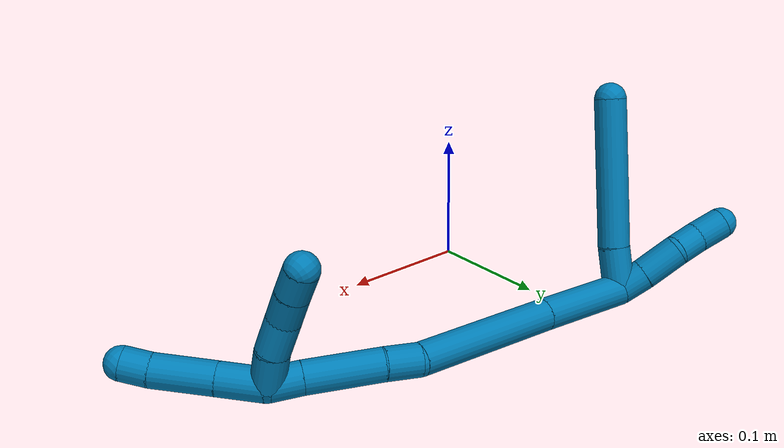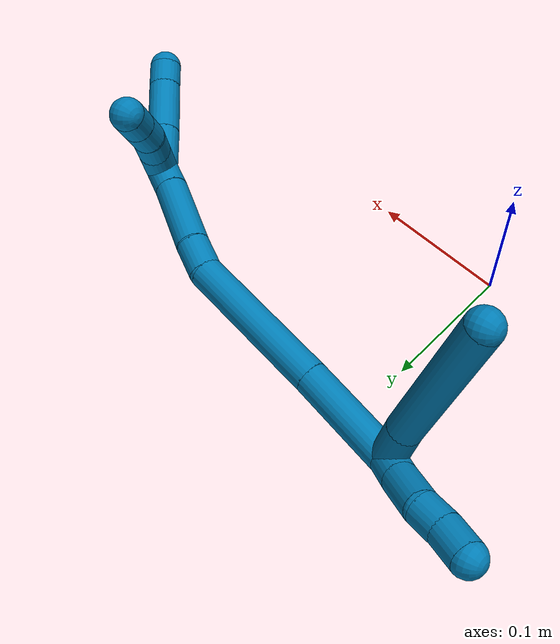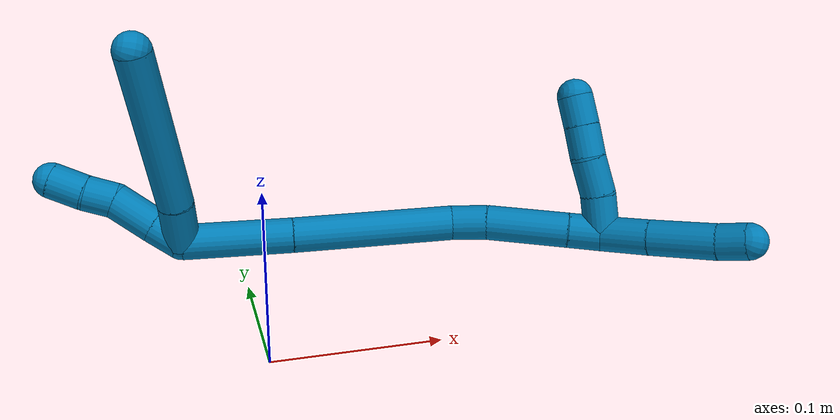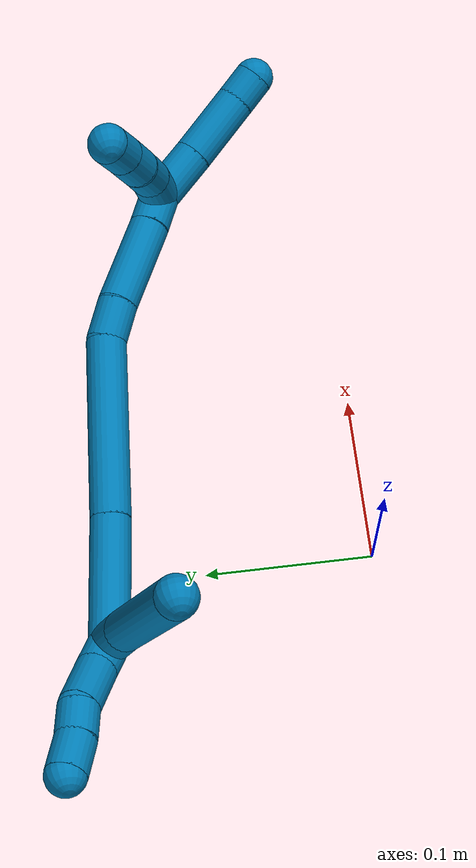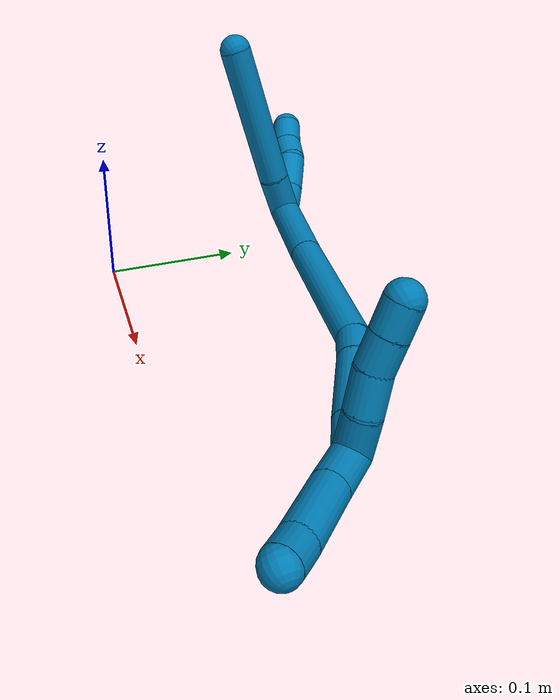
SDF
<sdf version="1.7">
 <world name="default">
  <model name="photoneo_s_sensor">
   <static>1</static>
   <pose>0 0 2 1.57079 1.57079 3.14159</pose>
   <link name="link">
    <inertial><mass>0.1</mass></inertial>
    <sensor name="sensor" type="depth">
     <update_rate>30</update_rate>
     <camera>
      <horizontal_fov>1.22</horizontal_fov>
      <image><width>1920</width><height>1200</height><format>B8G8R8</format></image>
      <clip><near>0.1</near><far>4</far></clip>
      <depth_camera><output>points</output></depth_camera>
     </camera>
     <plugin name="camera_plugin" filename="libgazebo_ros_depth_camera.so">
      <baseline>0.2</baseline>
      <alwaysOn>1</alwaysOn>
      <updateRate>0.0</updateRate>
      <cameraName>camera_ir</cameraName>
      <imageTopicName>/camera/color/image_raw</imageTopicName>
      <cameraInfoTopicName>/camera/color/camera_info</cameraInfoTopicName>
      <depthImageTopicName>/camera/depth/image_raw</depthImageTopicName>
      <depthImageCameraInfoTopicName>/camera/depth/camera_info</depthImageCameraInfoTopicName>
      <pointCloudTopicName>/camera/depth/points</pointCloudTopicName>
      <frameName>fr_optical</frameName>
      <pointCloudCutoff>0.1</pointCloudCutoff>
      <pointCloudCutoffMax>2.0</pointCloudCutoffMax>
      <distortionK1>0</distortionK1>
      <distortionK2>0</distortionK2>
      <distortionK3>0</distortionK3>
      <distortionT1>0</distortionT1>
      <distortionT2>0</distortionT2>
      <CxPrime>0</CxPrime>
      <Cx>0</Cx>
      <Cy>0</Cy>
      <focalLength>0</focalLength>
      <hackBaseline>0</hackBaseline>
     </plugin>
    </sensor>
   </link>
  </model>
  <model name="bin">
   <static>1</static>
   <link name="bottom">
    <collision name="collision-bottom">
     <pose>0 0 -0.01 0 -0 0</pose>
     <geometry><box><size>0.8 0.6 0.02</size></box></geometry>
     <surface>
      <friction><ode><mu>100</mu><mu2>100</mu2></ode></friction>
      <contact><collide_bitmask>65535</collide_bitmask></contact>
     </surface>
    </collision>
   </link>
   <link name="west_wall">
    <collision name="collision-west_wall">
     <pose>-0.41 0 0.1 0 -0 0</pose>
     <geometry><box><size>0.02 0.6 0.2</size></box></geometry>
     <surface>
      <friction><ode><mu>100</mu><mu2>100</mu2></ode></friction>
      <contact><collide_bitmask>65535</collide_bitmask></contact>
     </surface>
    </collision>
   </link>
   <link name="east_wall">
    <collision name="collision-east_wall">
     <pose>0.41 0 0.1 0 -0 0</pose>
     <geometry><box><size>0.02 0.6 0.2</size></box></geometry>
     <surface>
      <friction><ode><mu>100</mu><mu2>100</mu2></ode></friction>
      <contact><collide_bitmask>65535</collide_bitmask></contact>
     </surface>
    </collision>
   </link>
   <link name="south_wall">
    <collision name="collision-south_wall">
     <pose>0 -0.31 0.1 0 -0 0</pose>
     <geometry><box><size>0.8 0.02 0.2</size></box></geometry>
     <surface>
      <friction><ode><mu>100</mu><mu2>100</mu2></ode></friction>
      <contact><collide_bitmask>65535</collide_bitmask></contact>
     </surface>
    </collision>
   </link>
   <link name="north_wall">
    <collision name="collision-north_wall">
     <pose>0 0.31 0.1 0 -0 0</pose>
     <geometry><box><size>0.8 0.02 0.2</size></box></geometry>
     <surface>
      <friction><ode><mu>100</mu><mu2>100</mu2></ode></friction>
      <contact><collide_bitmask>65535</collide_bitmask></contact>
     </surface>
    </collision>
   </link>
  </model>
  <model name="9">
   <static>0</static>
   <link name="9">
    <collision name="collision-cylinder-e_1_2_8">
     <pose>0.008777 -0.013147 -0.006742 2.04464 0.536066 0.844857</pose>
     <geometry><cylinder><radius>0.0125</radius><length>0.03437</length></cylinder></geometry>
     <surface>
      <friction><ode><mu>1.16</mu><mu2>1.16</mu2><slip1>0</slip1><slip2>0</slip2></ode></friction>
      <contact><ode><kp>1e+06</kp><kd>1</kd><max_vel>0</max_vel><min_depth>0.001</min_depth></ode></contact>
     </surface>
    </collision>
    <visual name="visual-cylinder-e_1_2_8">
     <pose>0.008777 -0.013147 -0.006742 2.04464 0.536066 0.844857</pose>
     <geometry><cylinder><radius>0.0125</radius><length>0.03437</length></cylinder></geometry>
     <material><ambient>0 0.490196 0.709804 1</ambient></material>
    </visual>
    <collision name="collision-cylinder-e_2_8_6">
     <pose>0.043684 -0.070324 -0.040338 2.11846 0.468948 0.804543</pose>
     <geometry><cylinder><radius>0.0125</radius><length>0.11563</length></cylinder></geometry>
     <surface>
      <friction><ode><mu>1.16</mu><mu2>1.16</mu2><slip1>0</slip1><slip2>0</slip2></ode></friction>
      <contact><ode><kp>1e+06</kp><kd>1</kd><max_vel>0</max_vel><min_depth>0.001</min_depth></ode></contact>
     </surface>
    </collision>
    <visual name="visual-cylinder-e_2_8_6">
     <pose>0.043684 -0.070324 -0.040338 2.11846 0.468948 0.804543</pose>
     <geometry><cylinder><radius>0.0125</radius><length>0.11563</length></cylinder></geometry>
     <material><ambient>0 0.490196 0.709804 1</ambient></material>
    </visual>
    <collision name="collision-cylinder-e_1_2_9">
     <pose>-0.004346 -0.003842 -0.009627 2.76183 -0.397048 -1.61643</pose>
     <geometry><cylinder><radius>0.0125</radius><length>0.02248</length></cylinder></geometry>
     <surface>
      <friction><ode><mu>1.16</mu><mu2>1.16</mu2><slip1>0</slip1><slip2>0</slip2></ode></friction>
      <contact><ode><kp>1e+06</kp><kd>1</kd><max_vel>0</max_vel><min_depth>0.001</min_depth></ode></contact>
     </surface>
    </collision>
    <visual name="visual-cylinder-e_1_2_9">
     <pose>-0.004346 -0.003842 -0.009627 2.76183 -0.397048 -1.61643</pose>
     <geometry><cylinder><radius>0.0125</radius><length>0.02248</length></cylinder></geometry>
     <material><ambient>0 0.490196 0.709804 1</ambient></material>
    </visual>
    <collision name="collision-cylinder-e_2_9_10">
     <pose>-0.014025 -0.013851 -0.033236 2.72627 -0.335757 -1.35476</pose>
     <geometry><cylinder><radius>0.0125</radius><length>0.03237</length></cylinder></geometry>
     <surface>
      <friction><ode><mu>1.16</mu><mu2>1.16</mu2><slip1>0</slip1><slip2>0</slip2></ode></friction>
      <contact><ode><kp>1e+06</kp><kd>1</kd><max_vel>0</max_vel><min_depth>0.001</min_depth></ode></contact>
     </surface>
    </collision>
    <visual name="visual-cylinder-e_2_9_10">
     <pose>-0.014025 -0.013851 -0.033236 2.72627 -0.335757 -1.35476</pose>
     <geometry><cylinder><radius>0.0125</radius><length>0.03237</length></cylinder></geometry>
     <material><ambient>0 0.490196 0.709804 1</ambient></material>
    </visual>
    <collision name="collision-cylinder-e_3_10_11">
     <pose>-0.021705 -0.020809 -0.057345 3.06347 -0.227027 -2.48107</pose>
     <geometry><cylinder><radius>0.0125</radius><length>0.020852</length></cylinder></geometry>
     <surface>
      <friction><ode><mu>1.16</mu><mu2>1.16</mu2><slip1>0</slip1><slip2>0</slip2></ode></friction>
      <contact><ode><kp>1e+06</kp><kd>1</kd><max_vel>0</max_vel><min_depth>0.001</min_depth></ode></contact>
     </surface>
    </collision>
    <visual name="visual-cylinder-e_3_10_11">
     <pose>-0.021705 -0.020809 -0.057345 3.06347 -0.227027 -2.48107</pose>
     <geometry><cylinder><radius>0.0125</radius><length>0.020852</length></cylinder></geometry>
     <material><ambient>0 0.490196 0.709804 1</ambient></material>
    </visual>
    <collision name="collision-cylinder-e_4_11_5">
     <pose>-0.028046 -0.023746 -0.078745 2.95362 -0.334976 -2.12438</pose>
     <geometry><cylinder><radius>0.0125</radius><length>0.024299</length></cylinder></geometry>
     <surface>
      <friction><ode><mu>1.16</mu><mu2>1.16</mu2><slip1>0</slip1><slip2>0</slip2></ode></friction>
      <contact><ode><kp>1e+06</kp><kd>1</kd><max_vel>0</max_vel><min_depth>0.001</min_depth></ode></contact>
     </surface>
    </collision>
    <visual name="visual-cylinder-e_4_11_5">
     <pose>-0.028046 -0.023746 -0.078745 2.95362 -0.334976 -2.12438</pose>
     <geometry><cylinder><radius>0.0125</radius><length>0.024299</length></cylinder></geometry>
     <material><ambient>0 0.490196 0.709804 1</ambient></material>
    </visual>
    <collision name="collision-cylinder-e_1_2_12">
     <pose>0.010333 -0.009129 0.035764 0.249908 0.272968 0.034498</pose>
     <geometry><cylinder><radius>0.0125</radius><length>0.076659</length></cylinder></geometry>
     <surface>
      <friction><ode><mu>1.16</mu><mu2>1.16</mu2><slip1>0</slip1><slip2>0</slip2></ode></friction>
      <contact><ode><kp>1e+06</kp><kd>1</kd><max_vel>0</max_vel><min_depth>0.001</min_depth></ode></contact>
     </surface>
    </collision>
    <visual name="visual-cylinder-e_1_2_12">
     <pose>0.010333 -0.009129 0.035764 0.249908 0.272968 0.034498</pose>
     <geometry><cylinder><radius>0.0125</radius><length>0.076659</length></cylinder></geometry>
     <material><ambient>0 0.490196 0.709804 1</ambient></material>
    </visual>
    <collision name="collision-cylinder-e_2_12_13">
     <pose>0.034655 -0.032795 0.125616 0.262578 0.244746 0.032478</pose>
     <geometry><cylinder><radius>0.0125</radius><length>0.115455</length></cylinder></geometry>
     <surface>
      <friction><ode><mu>1.16</mu><mu2>1.16</mu2><slip1>0</slip1><slip2>0</slip2></ode></friction>
      <contact><ode><kp>1e+06</kp><kd>1</kd><max_vel>0</max_vel><min_depth>0.001</min_depth></ode></contact>
     </surface>
    </collision>
    <visual name="visual-cylinder-e_2_12_13">
     <pose>0.034655 -0.032795 0.125616 0.262578 0.244746 0.032478</pose>
     <geometry><cylinder><radius>0.0125</radius><length>0.115455</length></cylinder></geometry>
     <material><ambient>0 0.490196 0.709804 1</ambient></material>
    </visual>
    <collision name="collision-cylinder-e_3_13_14">
     <pose>0.055397 -0.049826 0.190582 0.225329 0.544213 0.063119</pose>
     <geometry><cylinder><radius>0.0125</radius><length>0.02609</length></cylinder></geometry>
     <surface>
      <friction><ode><mu>1.16</mu><mu2>1.16</mu2><slip1>0</slip1><slip2>0</slip2></ode></friction>
      <contact><ode><kp>1e+06</kp><kd>1</kd><max_vel>0</max_vel><min_depth>0.001</min_depth></ode></contact>
     </surface>
    </collision>
    <visual name="visual-cylinder-e_3_13_14">
     <pose>0.055397 -0.049826 0.190582 0.225329 0.544213 0.063119</pose>
     <geometry><cylinder><radius>0.0125</radius><length>0.02609</length></cylinder></geometry>
     <material><ambient>0 0.490196 0.709804 1</ambient></material>
    </visual>
    <collision name="collision-cylinder-e_4_14_15">
     <pose>0.078216 -0.054787 0.22529 0.103149 0.590704 0.031408</pose>
     <geometry><cylinder><radius>0.0125</radius><length>0.057691</length></cylinder></geometry>
     <surface>
      <friction><ode><mu>1.16</mu><mu2>1.16</mu2><slip1>0</slip1><slip2>0</slip2></ode></friction>
      <contact><ode><kp>1e+06</kp><kd>1</kd><max_vel>0</max_vel><min_depth>0.001</min_depth></ode></contact>
     </surface>
    </collision>
    <visual name="visual-cylinder-e_4_14_15">
     <pose>0.078216 -0.054787 0.22529 0.103149 0.590704 0.031408</pose>
     <geometry><cylinder><radius>0.0125</radius><length>0.057691</length></cylinder></geometry>
     <material><ambient>0 0.490196 0.709804 1</ambient></material>
    </visual>
    <collision name="collision-cylinder-e_5_15_1">
     <pose>0.100392 -0.058266 0.259459 0.097587 0.531669 0.02659</pose>
     <geometry><cylinder><radius>0.0125</radius><length>0.024104</length></cylinder></geometry>
     <surface>
      <friction><ode><mu>1.16</mu><mu2>1.16</mu2><slip1>0</slip1><slip2>0</slip2></ode></friction>
      <contact><ode><kp>1e+06</kp><kd>1</kd><max_vel>0</max_vel><min_depth>0.001</min_depth></ode></contact>
     </surface>
    </collision>
    <visual name="visual-cylinder-e_5_15_1">
     <pose>0.100392 -0.058266 0.259459 0.097587 0.531669 0.02659</pose>
     <geometry><cylinder><radius>0.0125</radius><length>0.024104</length></cylinder></geometry>
     <material><ambient>0 0.490196 0.709804 1</ambient></material>
    </visual>
    <collision name="collision-cylinder-e_1_1_16">
     <pose>0.107079 -0.072705 0.264763 1.92959 0.040212 0.05802</pose>
     <geometry><cylinder><radius>0.0125</radius><length>0.028704</length></cylinder></geometry>
     <surface>
      <friction><ode><mu>1.16</mu><mu2>1.16</mu2><slip1>0</slip1><slip2>0</slip2></ode></friction>
      <contact><ode><kp>1e+06</kp><kd>1</kd><max_vel>0</max_vel><min_depth>0.001</min_depth></ode></contact>
     </surface>
    </collision>
    <visual name="visual-cylinder-e_1_1_16">
     <pose>0.107079 -0.072705 0.264763 1.92959 0.040212 0.05802</pose>
     <geometry><cylinder><radius>0.0125</radius><length>0.028704</length></cylinder></geometry>
     <material><ambient>0 0.490196 0.709804 1</ambient></material>
    </visual>
    <collision name="collision-cylinder-e_2_16_17">
     <pose>0.106983 -0.097988 0.253316 2.06653 -0.049888 -0.083662</pose>
     <geometry><cylinder><radius>0.0125</radius><length>0.026988</length></cylinder></geometry>
     <surface>
      <friction><ode><mu>1.16</mu><mu2>1.16</mu2><slip1>0</slip1><slip2>0</slip2></ode></friction>
      <contact><ode><kp>1e+06</kp><kd>1</kd><max_vel>0</max_vel><min_depth>0.001</min_depth></ode></contact>
     </surface>
    </collision>
    <visual name="visual-cylinder-e_2_16_17">
     <pose>0.106983 -0.097988 0.253316 2.06653 -0.049888 -0.083662</pose>
     <geometry><cylinder><radius>0.0125</radius><length>0.026988</length></cylinder></geometry>
     <material><ambient>0 0.490196 0.709804 1</ambient></material>
    </visual>
    <collision name="collision-cylinder-e_3_17_18">
     <pose>0.104643 -0.120464 0.243054 1.91867 -0.146458 -0.208514</pose>
     <geometry><cylinder><radius>0.0125</radius><length>0.022842</length></cylinder></geometry>
     <surface>
      <friction><ode><mu>1.16</mu><mu2>1.16</mu2><slip1>0</slip1><slip2>0</slip2></ode></friction>
      <contact><ode><kp>1e+06</kp><kd>1</kd><max_vel>0</max_vel><min_depth>0.001</min_depth></ode></contact>
     </surface>
    </collision>
    <visual name="visual-cylinder-e_3_17_18">
     <pose>0.104643 -0.120464 0.243054 1.91867 -0.146458 -0.208514</pose>
     <geometry><cylinder><radius>0.0125</radius><length>0.022842</length></cylinder></geometry>
     <material><ambient>0 0.490196 0.709804 1</ambient></material>
    </visual>
    <collision name="collision-cylinder-e_4_18_4">
     <pose>0.101272 -0.140955 0.235341 1.94373 -0.15946 -0.233053</pose>
     <geometry><cylinder><radius>0.0125</radius><length>0.021466</length></cylinder></geometry>
     <surface>
      <friction><ode><mu>1.16</mu><mu2>1.16</mu2><slip1>0</slip1><slip2>0</slip2></ode></friction>
      <contact><ode><kp>1e+06</kp><kd>1</kd><max_vel>0</max_vel><min_depth>0.001</min_depth></ode></contact>
     </surface>
    </collision>
    <visual name="visual-cylinder-e_4_18_4">
     <pose>0.101272 -0.140955 0.235341 1.94373 -0.15946 -0.233053</pose>
     <geometry><cylinder><radius>0.0125</radius><length>0.021466</length></cylinder></geometry>
     <material><ambient>0 0.490196 0.709804 1</ambient></material>
    </visual>
    <collision name="collision-cylinder-e_1_1_19">
     <pose>0.120525 -0.060807 0.279747 0.152507 0.948246 0.078373</pose>
     <geometry><cylinder><radius>0.0125</radius><length>0.034523</length></cylinder></geometry>
     <surface>
      <friction><ode><mu>1.16</mu><mu2>1.16</mu2><slip1>0</slip1><slip2>0</slip2></ode></friction>
      <contact><ode><kp>1e+06</kp><kd>1</kd><max_vel>0</max_vel><min_depth>0.001</min_depth></ode></contact>
     </surface>
    </collision>
    <visual name="visual-cylinder-e_1_1_19">
     <pose>0.120525 -0.060807 0.279747 0.152507 0.948246 0.078373</pose>
     <geometry><cylinder><radius>0.0125</radius><length>0.034523</length></cylinder></geometry>
     <material><ambient>0 0.490196 0.709804 1</ambient></material>
    </visual>
    <collision name="collision-cylinder-e_2_19_20">
     <pose>0.152772 -0.064777 0.303063 0.180583 0.930094 0.090792</pose>
     <geometry><cylinder><radius>0.0125</radius><length>0.045465</length></cylinder></geometry>
     <surface>
      <friction><ode><mu>1.16</mu><mu2>1.16</mu2><slip1>0</slip1><slip2>0</slip2></ode></friction>
      <contact><ode><kp>1e+06</kp><kd>1</kd><max_vel>0</max_vel><min_depth>0.001</min_depth></ode></contact>
     </surface>
    </collision>
    <visual name="visual-cylinder-e_2_19_20">
     <pose>0.152772 -0.064777 0.303063 0.180583 0.930094 0.090792</pose>
     <geometry><cylinder><radius>0.0125</radius><length>0.045465</length></cylinder></geometry>
     <material><ambient>0 0.490196 0.709804 1</ambient></material>
    </visual>
    <collision name="collision-cylinder-e_3_20_3">
     <pose>0.179298 -0.069137 0.321676 0.350765 0.978529 0.188144</pose>
     <geometry><cylinder><radius>0.0125</radius><length>0.020012</length></cylinder></geometry>
     <surface>
      <friction><ode><mu>1.16</mu><mu2>1.16</mu2><slip1>0</slip1><slip2>0</slip2></ode></friction>
      <contact><ode><kp>1e+06</kp><kd>1</kd><max_vel>0</max_vel><min_depth>0.001</min_depth></ode></contact>
     </surface>
    </collision>
    <visual name="visual-cylinder-e_3_20_3">
     <pose>0.179298 -0.069137 0.321676 0.350765 0.978529 0.188144</pose>
     <geometry><cylinder><radius>0.0125</radius><length>0.020012</length></cylinder></geometry>
     <material><ambient>0 0.490196 0.709804 1</ambient></material>
    </visual>
    <collision name="collision-sphere-3">
     <pose>0.1876 -0.071056 0.326922 0 -0 0</pose>
     <geometry><sphere><radius>0.0125</radius></sphere></geometry>
     <surface>
      <friction><ode><mu>1.16</mu><mu2>1.16</mu2><slip1>0</slip1><slip2>0</slip2></ode></friction>
      <contact><ode><kp>1e+06</kp><kd>1</kd><max_vel>0</max_vel><min_depth>0.001</min_depth></ode></contact>
     </surface>
    </collision>
    <visual name="visual-sphere-3">
     <pose>0.1876 -0.071056 0.326922 0 -0 0</pose>
     <geometry><sphere><radius>0.0125</radius></sphere></geometry>
     <material><ambient>0 0.490196 0.709804 1</ambient></material>
    </visual>
    <collision name="collision-sphere-20">
     <pose>0.170996 -0.067217 0.316431 0 -0 0</pose>
     <geometry><sphere><radius>0.0125</radius></sphere></geometry>
     <surface>
      <friction><ode><mu>1.16</mu><mu2>1.16</mu2><slip1>0</slip1><slip2>0</slip2></ode></friction>
      <contact><ode><kp>1e+06</kp><kd>1</kd><max_vel>0</max_vel><min_depth>0.001</min_depth></ode></contact>
     </surface>
    </collision>
    <visual name="visual-sphere-20">
     <pose>0.170996 -0.067217 0.316431 0 -0 0</pose>
     <geometry><sphere><radius>0.0125</radius></sphere></geometry>
     <material><ambient>0 0.490196 0.709804 1</ambient></material>
    </visual>
    <collision name="collision-sphere-19">
     <pose>0.134548 -0.062336 0.289695 0 -0 0</pose>
     <geometry><sphere><radius>0.0125</radius></sphere></geometry>
     <surface>
      <friction><ode><mu>1.16</mu><mu2>1.16</mu2><slip1>0</slip1><slip2>0</slip2></ode></friction>
      <contact><ode><kp>1e+06</kp><kd>1</kd><max_vel>0</max_vel><min_depth>0.001</min_depth></ode></contact>
     </surface>
    </collision>
    <visual name="visual-sphere-19">
     <pose>0.134548 -0.062336 0.289695 0 -0 0</pose>
     <geometry><sphere><radius>0.0125</radius></sphere></geometry>
     <material><ambient>0 0.490196 0.709804 1</ambient></material>
    </visual>
    <collision name="collision-sphere-11">
     <pose>-0.024051 -0.021602 -0.067473 0 -0 0</pose>
     <geometry><sphere><radius>0.0125</radius></sphere></geometry>
     <surface>
      <friction><ode><mu>1.16</mu><mu2>1.16</mu2><slip1>0</slip1><slip2>0</slip2></ode></friction>
      <contact><ode><kp>1e+06</kp><kd>1</kd><max_vel>0</max_vel><min_depth>0.001</min_depth></ode></contact>
     </surface>
    </collision>
    <visual name="visual-sphere-11">
     <pose>-0.024051 -0.021602 -0.067473 0 -0 0</pose>
     <geometry><sphere><radius>0.0125</radius></sphere></geometry>
     <material><ambient>0 0.490196 0.709804 1</ambient></material>
    </visual>
    <collision name="collision-sphere-10">
     <pose>-0.019358 -0.020016 -0.047218 0 -0 0</pose>
     <geometry><sphere><radius>0.0125</radius></sphere></geometry>
     <surface>
      <friction><ode><mu>1.16</mu><mu2>1.16</mu2><slip1>0</slip1><slip2>0</slip2></ode></friction>
      <contact><ode><kp>1e+06</kp><kd>1</kd><max_vel>0</max_vel><min_depth>0.001</min_depth></ode></contact>
     </surface>
    </collision>
    <visual name="visual-sphere-10">
     <pose>-0.019358 -0.020016 -0.047218 0 -0 0</pose>
     <geometry><sphere><radius>0.0125</radius></sphere></geometry>
     <material><ambient>0 0.490196 0.709804 1</ambient></material>
    </visual>
    <collision name="collision-sphere-6">
     <pose>0.069813 -0.114354 -0.067192 0 -0 0</pose>
     <geometry><sphere><radius>0.0125</radius></sphere></geometry>
     <surface>
      <friction><ode><mu>1.16</mu><mu2>1.16</mu2><slip1>0</slip1><slip2>0</slip2></ode></friction>
      <contact><ode><kp>1e+06</kp><kd>1</kd><max_vel>0</max_vel><min_depth>0.001</min_depth></ode></contact>
     </surface>
    </collision>
    <visual name="visual-sphere-6">
     <pose>0.069813 -0.114354 -0.067192 0 -0 0</pose>
     <geometry><sphere><radius>0.0125</radius></sphere></geometry>
     <material><ambient>0 0.490196 0.709804 1</ambient></material>
    </visual>
    <collision name="collision-sphere-9">
     <pose>-0.008693 -0.007685 -0.019254 0 -0 0</pose>
     <geometry><sphere><radius>0.0125</radius></sphere></geometry>
     <surface>
      <friction><ode><mu>1.16</mu><mu2>1.16</mu2><slip1>0</slip1><slip2>0</slip2></ode></friction>
      <contact><ode><kp>1e+06</kp><kd>1</kd><max_vel>0</max_vel><min_depth>0.001</min_depth></ode></contact>
     </surface>
    </collision>
    <visual name="visual-sphere-9">
     <pose>-0.008693 -0.007685 -0.019254 0 -0 0</pose>
     <geometry><sphere><radius>0.0125</radius></sphere></geometry>
     <material><ambient>0 0.490196 0.709804 1</ambient></material>
    </visual>
    <collision name="collision-sphere-2">
     <geometry><sphere><radius>0.0125</radius></sphere></geometry>
     <surface>
      <friction><ode><mu>1.16</mu><mu2>1.16</mu2><slip1>0</slip1><slip2>0</slip2></ode></friction>
      <contact><ode><kp>1e+06</kp><kd>1</kd><max_vel>0</max_vel><min_depth>0.001</min_depth></ode></contact>
     </surface>
    </collision>
    <visual name="visual-sphere-2">
     <geometry><sphere><radius>0.0125</radius></sphere></geometry>
     <material><ambient>0 0.490196 0.709804 1</ambient></material>
    </visual>
    <collision name="collision-sphere-8">
     <pose>0.017555 -0.026293 -0.013484 0 -0 0</pose>
     <geometry><sphere><radius>0.0125</radius></sphere></geometry>
     <surface>
      <friction><ode><mu>1.16</mu><mu2>1.16</mu2><slip1>0</slip1><slip2>0</slip2></ode></friction>
      <contact><ode><kp>1e+06</kp><kd>1</kd><max_vel>0</max_vel><min_depth>0.001</min_depth></ode></contact>
     </surface>
    </collision>
    <visual name="visual-sphere-8">
     <pose>0.017555 -0.026293 -0.013484 0 -0 0</pose>
     <geometry><sphere><radius>0.0125</radius></sphere></geometry>
     <material><ambient>0 0.490196 0.709804 1</ambient></material>
    </visual>
    <collision name="collision-sphere-5">
     <pose>-0.03204 -0.02589 -0.090017 0 -0 0</pose>
     <geometry><sphere><radius>0.0125</radius></sphere></geometry>
     <surface>
      <friction><ode><mu>1.16</mu><mu2>1.16</mu2><slip1>0</slip1><slip2>0</slip2></ode></friction>
      <contact><ode><kp>1e+06</kp><kd>1</kd><max_vel>0</max_vel><min_depth>0.001</min_depth></ode></contact>
     </surface>
    </collision>
    <visual name="visual-sphere-5">
     <pose>-0.03204 -0.02589 -0.090017 0 -0 0</pose>
     <geometry><sphere><radius>0.0125</radius></sphere></geometry>
     <material><ambient>0 0.490196 0.709804 1</ambient></material>
    </visual>
    <collision name="collision-sphere-12">
     <pose>0.020667 -0.018257 0.071528 0 -0 0</pose>
     <geometry><sphere><radius>0.0125</radius></sphere></geometry>
     <surface>
      <friction><ode><mu>1.16</mu><mu2>1.16</mu2><slip1>0</slip1><slip2>0</slip2></ode></friction>
      <contact><ode><kp>1e+06</kp><kd>1</kd><max_vel>0</max_vel><min_depth>0.001</min_depth></ode></contact>
     </surface>
    </collision>
    <visual name="visual-sphere-12">
     <pose>0.020667 -0.018257 0.071528 0 -0 0</pose>
     <geometry><sphere><radius>0.0125</radius></sphere></geometry>
     <material><ambient>0 0.490196 0.709804 1</ambient></material>
    </visual>
    <collision name="collision-sphere-13">
     <pose>0.048643 -0.047333 0.179703 0 -0 0</pose>
     <geometry><sphere><radius>0.0125</radius></sphere></geometry>
     <surface>
      <friction><ode><mu>1.16</mu><mu2>1.16</mu2><slip1>0</slip1><slip2>0</slip2></ode></friction>
      <contact><ode><kp>1e+06</kp><kd>1</kd><max_vel>0</max_vel><min_depth>0.001</min_depth></ode></contact>
     </surface>
    </collision>
    <visual name="visual-sphere-13">
     <pose>0.048643 -0.047333 0.179703 0 -0 0</pose>
     <geometry><sphere><radius>0.0125</radius></sphere></geometry>
     <material><ambient>0 0.490196 0.709804 1</ambient></material>
    </visual>
    <collision name="collision-sphere-14">
     <pose>0.062151 -0.05232 0.20146 0 -0 0</pose>
     <geometry><sphere><radius>0.0125</radius></sphere></geometry>
     <surface>
      <friction><ode><mu>1.16</mu><mu2>1.16</mu2><slip1>0</slip1><slip2>0</slip2></ode></friction>
      <contact><ode><kp>1e+06</kp><kd>1</kd><max_vel>0</max_vel><min_depth>0.001</min_depth></ode></contact>
     </surface>
    </collision>
    <visual name="visual-sphere-14">
     <pose>0.062151 -0.05232 0.20146 0 -0 0</pose>
     <geometry><sphere><radius>0.0125</radius></sphere></geometry>
     <material><ambient>0 0.490196 0.709804 1</ambient></material>
    </visual>
    <collision name="collision-sphere-15">
     <pose>0.094281 -0.057254 0.24912 0 -0 0</pose>
     <geometry><sphere><radius>0.0125</radius></sphere></geometry>
     <surface>
      <friction><ode><mu>1.16</mu><mu2>1.16</mu2><slip1>0</slip1><slip2>0</slip2></ode></friction>
      <contact><ode><kp>1e+06</kp><kd>1</kd><max_vel>0</max_vel><min_depth>0.001</min_depth></ode></contact>
     </surface>
    </collision>
    <visual name="visual-sphere-15">
     <pose>0.094281 -0.057254 0.24912 0 -0 0</pose>
     <geometry><sphere><radius>0.0125</radius></sphere></geometry>
     <material><ambient>0 0.490196 0.709804 1</ambient></material>
    </visual>
    <collision name="collision-sphere-1">
     <pose>0.106502 -0.059278 0.269798 0 -0 0</pose>
     <geometry><sphere><radius>0.0125</radius></sphere></geometry>
     <surface>
      <friction><ode><mu>1.16</mu><mu2>1.16</mu2><slip1>0</slip1><slip2>0</slip2></ode></friction>
      <contact><ode><kp>1e+06</kp><kd>1</kd><max_vel>0</max_vel><min_depth>0.001</min_depth></ode></contact>
     </surface>
    </collision>
    <visual name="visual-sphere-1">
     <pose>0.106502 -0.059278 0.269798 0 -0 0</pose>
     <geometry><sphere><radius>0.0125</radius></sphere></geometry>
     <material><ambient>0 0.490196 0.709804 1</ambient></material>
    </visual>
    <collision name="collision-sphere-18">
     <pose>0.102976 -0.131086 0.239202 0 -0 0</pose>
     <geometry><sphere><radius>0.0125</radius></sphere></geometry>
     <surface>
      <friction><ode><mu>1.16</mu><mu2>1.16</mu2><slip1>0</slip1><slip2>0</slip2></ode></friction>
      <contact><ode><kp>1e+06</kp><kd>1</kd><max_vel>0</max_vel><min_depth>0.001</min_depth></ode></contact>
     </surface>
    </collision>
    <visual name="visual-sphere-18">
     <pose>0.102976 -0.131086 0.239202 0 -0 0</pose>
     <geometry><sphere><radius>0.0125</radius></sphere></geometry>
     <material><ambient>0 0.490196 0.709804 1</ambient></material>
    </visual>
    <collision name="collision-sphere-16">
     <pose>0.107656 -0.086133 0.259727 0 -0 0</pose>
     <geometry><sphere><radius>0.0125</radius></sphere></geometry>
     <surface>
      <friction><ode><mu>1.16</mu><mu2>1.16</mu2><slip1>0</slip1><slip2>0</slip2></ode></friction>
      <contact><ode><kp>1e+06</kp><kd>1</kd><max_vel>0</max_vel><min_depth>0.001</min_depth></ode></contact>
     </surface>
    </collision>
    <visual name="visual-sphere-16">
     <pose>0.107656 -0.086133 0.259727 0 -0 0</pose>
     <geometry><sphere><radius>0.0125</radius></sphere></geometry>
     <material><ambient>0 0.490196 0.709804 1</ambient></material>
    </visual>
    <collision name="collision-sphere-17">
     <pose>0.10631 -0.109843 0.246905 0 -0 0</pose>
     <geometry><sphere><radius>0.0125</radius></sphere></geometry>
     <surface>
      <friction><ode><mu>1.16</mu><mu2>1.16</mu2><slip1>0</slip1><slip2>0</slip2></ode></friction>
      <contact><ode><kp>1e+06</kp><kd>1</kd><max_vel>0</max_vel><min_depth>0.001</min_depth></ode></contact>
     </surface>
    </collision>
    <visual name="visual-sphere-17">
     <pose>0.10631 -0.109843 0.246905 0 -0 0</pose>
     <geometry><sphere><radius>0.0125</radius></sphere></geometry>
     <material><ambient>0 0.490196 0.709804 1</ambient></material>
    </visual>
    <collision name="collision-sphere-4">
     <pose>0.099568 -0.150823 0.23148 0 -0 0</pose>
     <geometry><sphere><radius>0.0125</radius></sphere></geometry>
     <surface>
      <friction><ode><mu>1.16</mu><mu2>1.16</mu2><slip1>0</slip1><slip2>0</slip2></ode></friction>
      <contact><ode><kp>1e+06</kp><kd>1</kd><max_vel>0</max_vel><min_depth>0.001</min_depth></ode></contact>
     </surface>
    </collision>
    <visual name="visual-sphere-4">
     <pose>0.099568 -0.150823 0.23148 0 -0 0</pose>
     <geometry><sphere><radius>0.0125</radius></sphere></geometry>
     <material><ambient>0 0.490196 0.709804 1</ambient></material>
    </visual>
    <inertial>
     <pose>0.056077 -0.049889 0.116113 0 -0 0</pose>
     <mass>0.75</mass>
     <inertia>
      <ixx>0.000393</ixx>
      <ixy>0</ixy>
      <ixz>0</ixz>
      <iyy>0.000258</iyy>
      <iyz>0</iyz>
      <izz>4.6e-05</izz>
     </inertia>
    </inertial>
   </link>
   <pose>-0.037964 0.160628 0.011497 -1.88821 -0.256372 -1.39806</pose>
  </model>
 </world>
</sdf>
